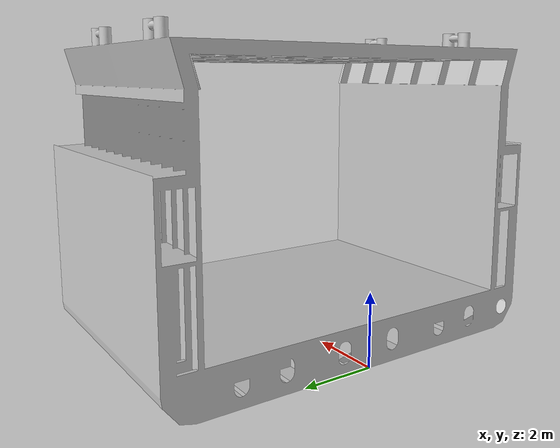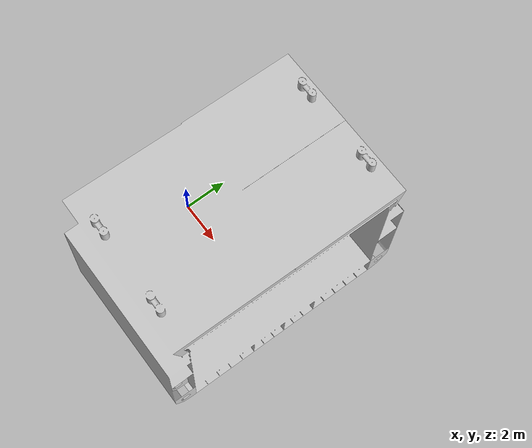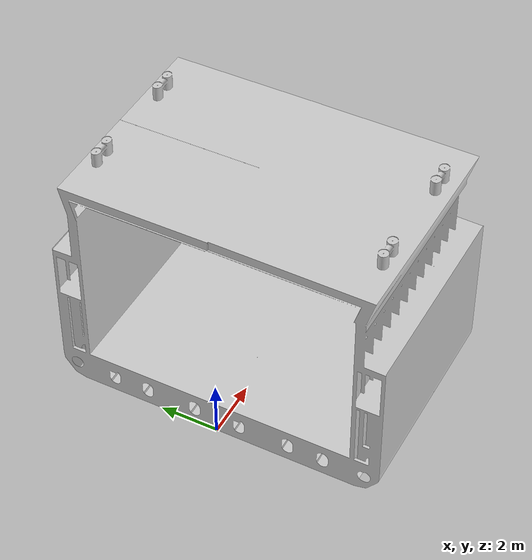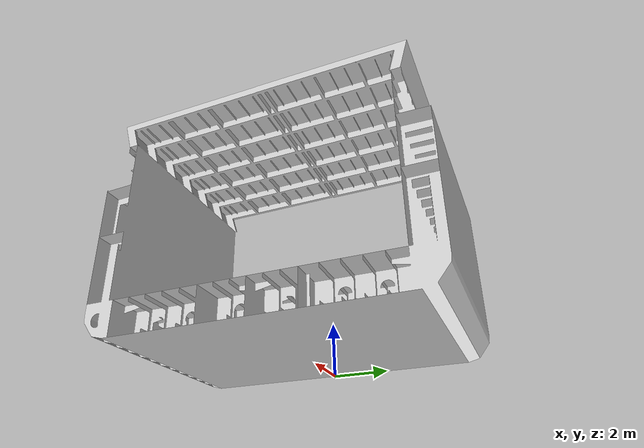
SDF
<?xml version='1.0'?>
<sdf version='1.6'>
  <model name='ship_middle_section'>
	<static>true</static>

    <link name="link">
	  <pose>0 0 0 0 0 0</pose>
      <collision name="collision">
        <geometry>
          <mesh>
            <scale>0.1 0.1 0.1</scale>
            <uri>model://ship_middle_section/meshes/model.dae</uri>
          </mesh>
        </geometry>
      </collision>
      <visual name="visual">
        <geometry>
          <mesh>
            <scale>0.1 0.1 0.1</scale>
            <uri>model://ship_middle_section/meshes/model.dae</uri>
          </mesh>
        </geometry>
      </visual>
    </link>

	<link name="body">
		<inertial>
			<mass>-50</mass>
			<inertia>
			  <ixx>-90</ixx>
			  <ixy>0</ixy>
			  <ixz>0</ixz>
			  <iyy>0</iyy>
			  <iyz>0</iyz>
			  <izz>0</izz>
			</inertia>
		</inertial>
	</link>
  </model>
</sdf>
